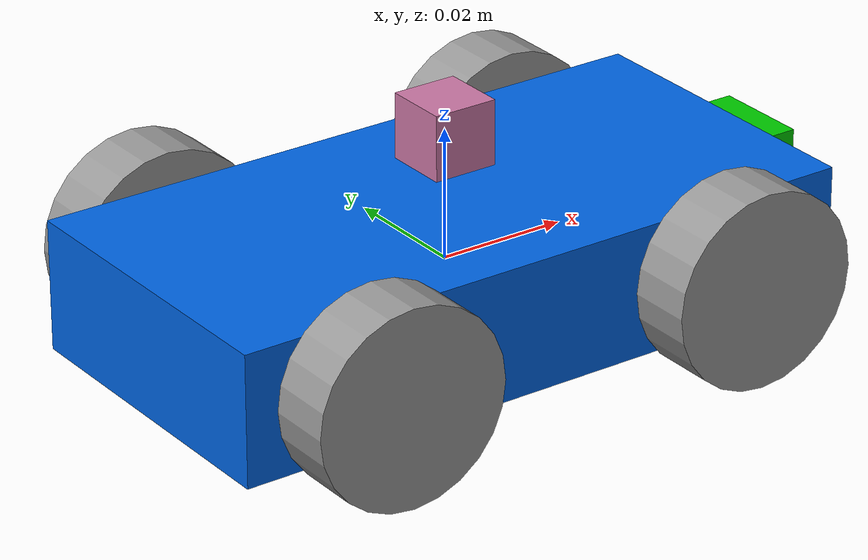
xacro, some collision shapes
<?xml version='1.0'?>

<robot name="myrobot" xmlns:xacro="http://www.ros.org/wiki/xacro">

  <xacro:property name="cameraSize" value="0.015"/>
  <xacro:property name="cameraMass" value="0.1"/>

  <xacro:include filename="$(find mybot_description)/urdf/mybot.gazebo" />
  <xacro:include filename="$(find mybot_description)/urdf/materials.xacro" />
  <xacro:include filename="$(find mybot_description)/urdf/macros.xacro" />

  <link name="chassis">
        <pose>0 0 0.1 0 0 0</pose>

        <inertial>
            <mass value="20.0"/>
            <inertia ixx="0.1" ixy="0.0" ixz="0.0" iyy="0.1" iyz="0.0" izz="0.1"/>
        </inertial>

        <visual name="chassis_visual">
            <origin xyz="0.0 0.0 0.0" rpy="0.0 0.0 0.0"/>
            <geometry>
                <box size="0.1 0.05 0.02"/>
            </geometry>
            <material name="blue"/>
        </visual>

        <collision name='collision'>
            <geometry>
                <box size="0.1 0.05 0.02"/>
            </geometry>
        </collision>

    </link>

    <link name="left_front_wheel">

        <collision name="collision">
            <origin xyz="0 0 0" rpy="0 1.5707 1.5707"/>
            <geometry>
                <cylinder radius="0.015" length="0.01"/>
            </geometry>
        </collision>

        <visual name="left_front_wheel_visual">
            <origin xyz="0 0 0" rpy="0 1.5707 1.5707"/>
            <geometry>
                <cylinder radius="0.015" length="0.01"/>
            </geometry>
        </visual>

        <inertial>
            <origin xyz="0 0 0" rpy="0 1.5707 1.5707"/>
            <mass value="3"/>
            <inertia
                ixx="1.0" ixy="0.0" ixz="0.0"
                iyy="1.0" iyz="0.0"
                izz="1.0"/>
        </inertial>
    </link>

    <link name="left_back_wheel">

        <collision name="collision">
            <origin xyz="0 0 0" rpy="0 1.5707 1.5707"/>
            <geometry>
                <cylinder radius="0.015" length="0.01"/>
            </geometry>
        </collision>

        <visual name="left_back_wheel_visual">
            <origin xyz="0 0 0" rpy="0 1.5707 1.5707"/>
            <geometry>
                <cylinder radius="0.015" length="0.01"/>
            </geometry>
        </visual>

        <inertial>
            <origin xyz="0 0 0" rpy="0 1.5707 1.5707"/>
            <mass value="3"/>
            <inertia
                ixx="1.0" ixy="0.0" ixz="0.0"
                iyy="1.0" iyz="0.0"
                izz="1.0"/>
        </inertial>
    </link>

    <link name="right_front_wheel">

        <collision name="collision">
            <origin xyz="0 0 0" rpy="0 1.5707 1.5707"/>
            <geometry>
                <cylinder radius="0.015" length="0.01"/>
            </geometry>
        </collision>

        <visual name="right_front_wheel_visual">
            <origin xyz="0 0 0" rpy="0 1.5707 1.5707"/>
            <geometry>
                <cylinder radius="0.015" length="0.01"/>
            </geometry>
        </visual>

        <inertial>
            <origin xyz="0 0 0" rpy="0 1.5707 1.5707"/>
            <mass value="3"/>
            <inertia
                ixx="1.0" ixy="0.0" ixz="0.0"
                iyy="1.0" iyz="0.0"
                izz="1.0"/>
        </inertial>
    </link>

    <link name="right_back_wheel">

        <collision name="collision">
            <origin xyz="0 0 0" rpy="0 1.5707 1.5707"/>
            <geometry>
                <cylinder radius="0.015" length="0.01"/>
            </geometry>
        </collision>

        <visual name="right_back_wheel_visual">
            <origin xyz="0 0 0" rpy="0 1.5707 1.5707"/>
            <geometry>
                <cylinder radius="0.015" length="0.01"/>
            </geometry>
        </visual>

        <inertial>
            <origin xyz="0 0 0" rpy="0 1.5707 1.5707"/>
            <mass value="3"/>
            <inertia
                ixx="1.0" ixy="0.0" ixz="0.0"
                iyy="1.0" iyz="0.0"
                izz="1.0"/>
        </inertial>
    </link>

    <joint type="continuous" name="left_front_wheel_hinge">
        <origin xyz="0.03 0.03 0.0" rpy="0 0 0"/>
        <child link="left_front_wheel"/>
        <parent link="chassis"/>
        <axis xyz="0 1 0" rpy="0 0 0"/>
        <limit effort="100" velocity="100"/>
        <joint_properties damping="0.0" friction="0.0"/>
    </joint>

    <joint type="continuous" name="left_back_wheel_hinge">
        <origin xyz="-0.03 0.03 0.0" rpy="0 0 0"/>
        <child link="left_back_wheel"/>
        <parent link="chassis"/>
        <axis xyz="0 1 0" rpy="0 0 0"/>
        <limit effort="100" velocity="100"/>
        <joint_properties damping="0.0" friction="0.0"/>
    </joint>

    <joint type="continuous" name="right_front_wheel_hinge">
        <origin xyz="0.03 -0.03 0.0" rpy="0 0 0"/>
        <child link="right_front_wheel"/>
        <parent link="chassis"/>
        <axis xyz="0 1 0" rpy="0 0 0"/>
        <limit effort="100" velocity="100"/>
        <joint_properties damping="0.0" friction="0.0"/>
    </joint>

    <joint type="continuous" name="right_back_wheel_hinge">
        <origin xyz="-0.03 -0.03 0.0" rpy="0 0 0"/>
        <child link="right_back_wheel"/>
        <parent link="chassis"/>
        <axis xyz="0 1 0" rpy="0 0 0"/>
        <limit effort="100" velocity="100"/>
        <joint_properties damping="0.0" friction="0.0"/>
    </joint>

  <link name="camera">
    <collision>
      <origin xyz="0 0 0" rpy="0 0 0"/>
      <geometry>
        <box size="${cameraSize} ${cameraSize} ${cameraSize}"/>
      </geometry>
    </collision>

    <visual>
      <origin xyz="0 0 0" rpy="0 0 0"/>
      <geometry>
        <box size="${cameraSize} ${cameraSize} ${cameraSize}"/>
      </geometry>
      <material name="green"/>
    </visual>

    <inertial>
      <mass value="${cameraMass}" />
      <origin xyz="0 0 0" rpy="0 0 0"/>
      <box_inertia m="${cameraMass}" x="${cameraSize}" y="${cameraSize}" z="${cameraSize}" />
      <inertia ixx="1e-6" ixy="0" ixz="0" iyy="1e-6" iyz="0" izz="1e-6" />
    </inertial>
  </link>

  <joint name="camera_joint" type="fixed">
    <axis xyz="0 1 0" />
    <origin xyz="0.05 0 0" rpy="0 0 0"/>
    <parent link="chassis"/>
    <child link="camera"/>
  </joint>

  <joint name="hokuyo_joint" type="fixed">
    <axis xyz="0 1 0" />
    <origin xyz="0 0 0.02" rpy="0 0 0"/>
    <parent link="chassis"/>
    <child link="hokuyo"/>
  </joint>

  <!-- Hokuyo Laser -->
  <link name="hokuyo">
    <collision>
      <origin xyz="0 0 0" rpy="0 0 0"/>
      <geometry>
    <box size="0.01 0.01 0.01"/>
      </geometry>
    </collision>

    <visual>
      <origin xyz="0 0 0" rpy="0 0 0"/>
      <geometry>
        <mesh filename="package://mybot_description/meshes/hokuyo.dae" scale="0.3 0.3 0.3"/>
      </geometry>
    </visual>

    <inertial>
      <mass value="1e-5" />
      <origin xyz="0 0 0" rpy="0 0 0"/>
      <inertia ixx="1e-6" ixy="0" ixz="0" iyy="1e-6" iyz="0" izz="1e-6" />
    </inertial>
  </link>

</robot>

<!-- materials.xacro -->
<robot>

  <material name="black">
    <color rgba="0.0 0.0 0.0 1.0"/>
  </material>

  <material name="blue">
    <color rgba="0.0 0.4 0.9 1.0"/>
  </material>

  <material name="green">
    <color rgba="0.0 0.8 0.0 1.0"/>
  </material>

  <material name="grey">
    <color rgba="0.2 0.2 0.2 1.0"/>
  </material>

  <material name="orange">
    <color rgba="${255/255} ${108/255} ${10/255} 1.0"/>
  </material>

  <material name="brown">
    <color rgba="${222/255} ${207/255} ${195/255} 1.0"/>
  </material>

  <material name="red">
    <color rgba="0.8 0.0 0.0 1.0"/>
  </material>

  <material name="white">
    <color rgba="1.0 1.0 1.0 1.0"/>
  </material>

</robot>
